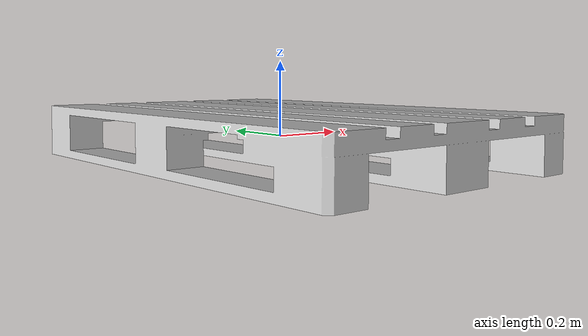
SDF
<?xml version="1.0" ?>
<sdf version="1.5">
  <model name="euro_pallet">
    <link name="link">
      <pose>0 0 0 0 0 0</pose>
      <inertial>
        <mass>20.0</mass>
        <inertia>
          <ixx>2.43</ixx>
          <ixy>0</ixy>
          <ixz>0</ixz>
          <iyy>1.10</iyy>
          <iyz>0</iyz>
          <izz>3.47</izz>
        </inertia>
      </inertial>
      <collision name="collision">
        <pose>0 0 0.05 0 0 0</pose>
        <geometry>
          <mesh>
            <uri>model://euro_pallet/meshes/pallet.dae</uri>
            <scale>0.1 0.1 0.1</scale>
          </mesh>
        </geometry>
      </collision>
      <visual name="visual">
        <pose>0 0 0.05 0 0 0</pose>
        <geometry>
          <mesh>
            <uri>model://euro_pallet/meshes/pallet.dae</uri>
            <scale>0.1 0.1 0.1</scale>
          </mesh>
        </geometry>
      </visual>
    </link>
  </model>
</sdf>
